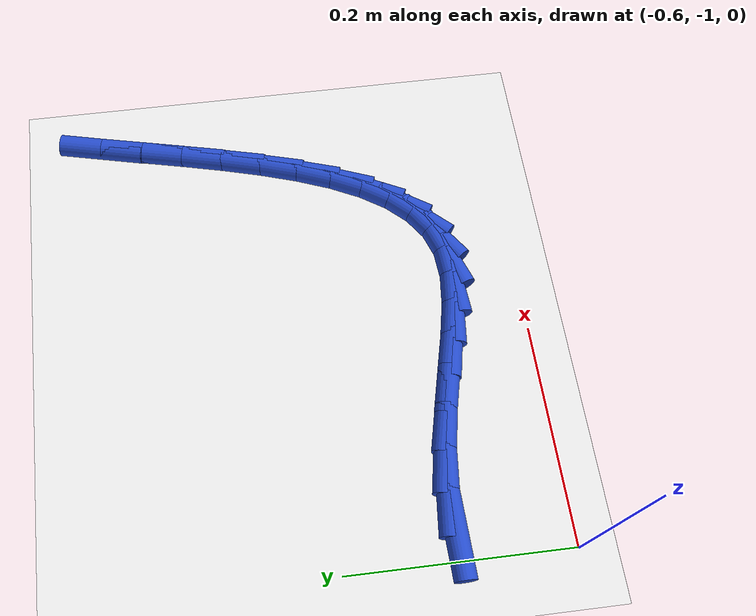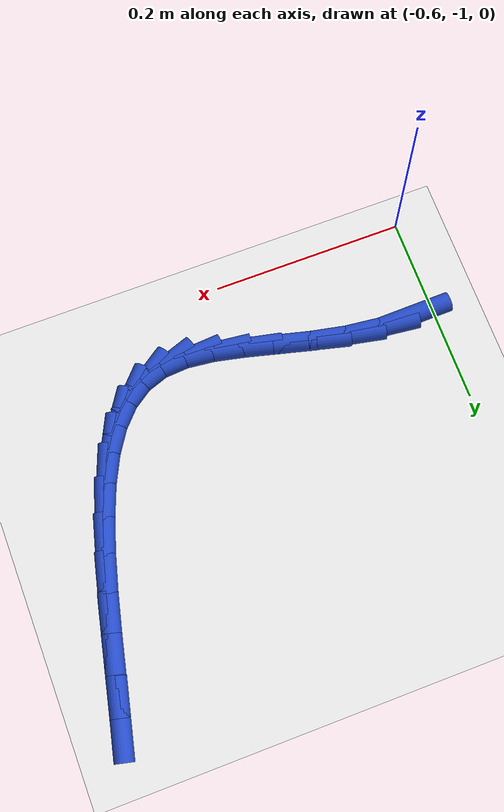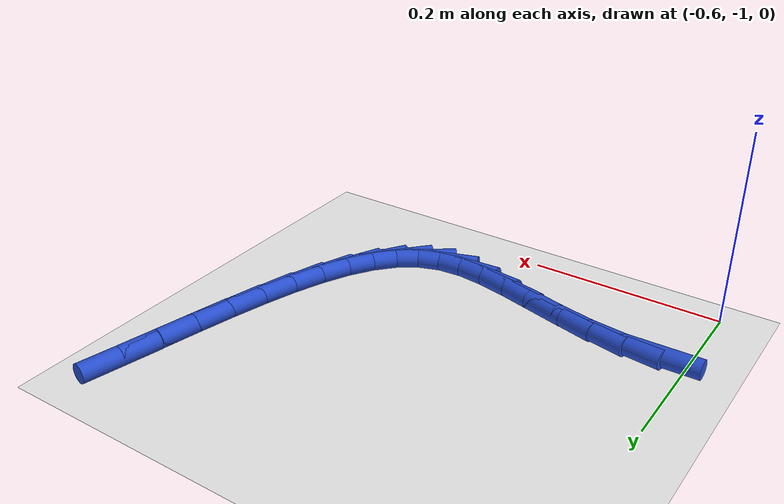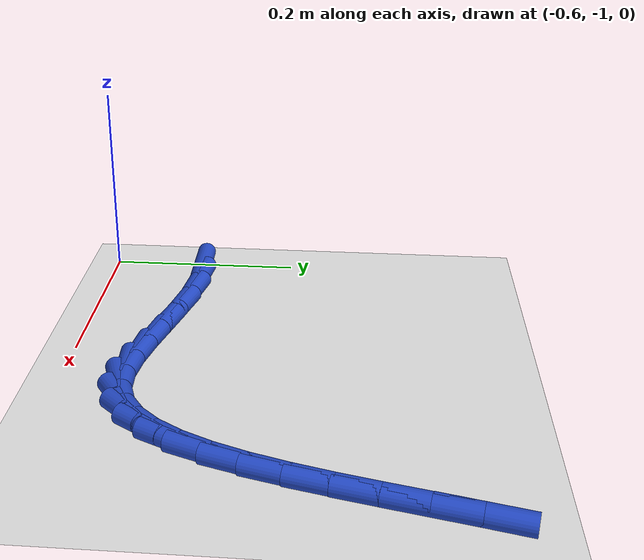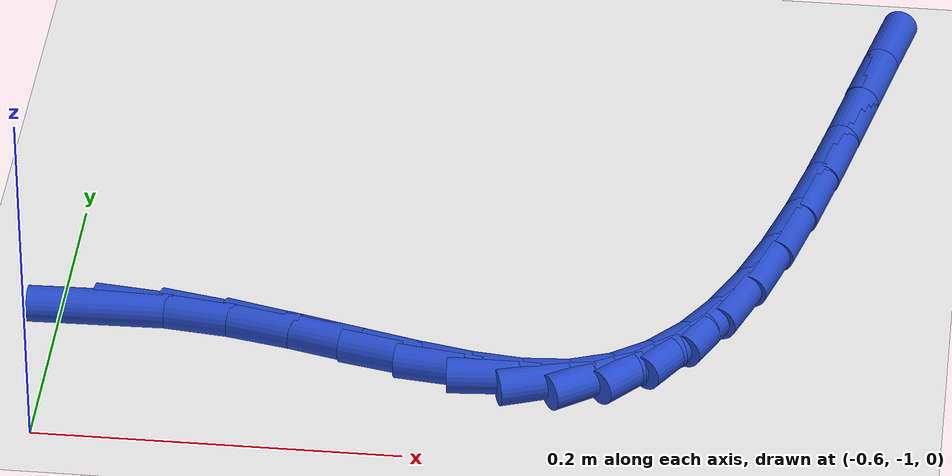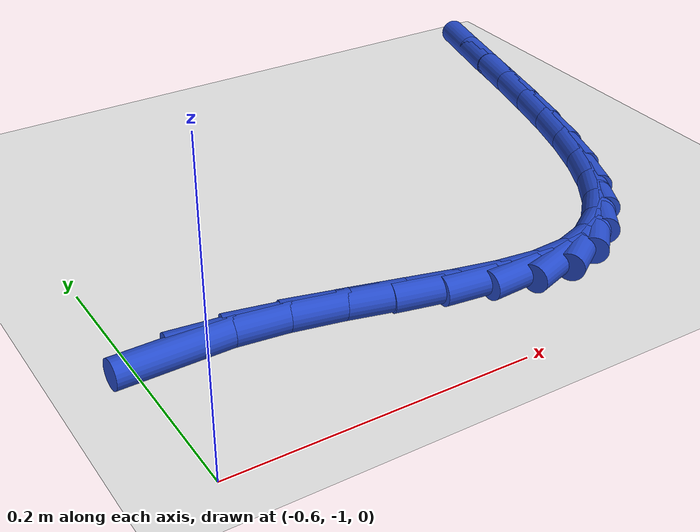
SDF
<sdf version="1.6">
 <world name="default">
  <model name="ground_plane">
   <static>1</static>
   <link name="link">
    <collision name="collision">
     <geometry><plane><normal>0 0 1</normal><size>100 100</size></plane></geometry>
     <surface><friction><ode><mu>100</mu><mu2>50</mu2></ode></friction></surface>
    </collision>
    <visual name="visual">
     <cast_shadows>0</cast_shadows>
     <geometry><plane><normal>0 0 1</normal><size>100 100</size></plane></geometry>
     <material>
      <script><uri>file://media/materials/scripts/gazebo.material</uri><name>Gazebo/WhiteGlow</name></script>
     </material>
    </visual>
   </link>
  </model>
  <model name="line">
   <link name="link_202">
    <pose>-0.5768679988752257 -0.8984970631908793 0.01 0 1.57 0.01736804363629547</pose>
    <collision name="collision">
     <geometry><cylinder><radius>0.01</radius><length>0.08</length></cylinder></geometry>
    </collision>
    <visual name="visual">
     <material>
      <script><name>Gazebo/Blue</name><uri>file://media/materials/scripts/gazebo.material</uri></script>
     </material>
     <geometry><cylinder><radius>0.01</radius><length>0.08</length></cylinder></geometry>
    </visual>
   </link>
   <link name="link_203">
    <pose>-0.5409756925989049 -0.8978736213611486 0.01 0 1.57 -0.11512561650365198</pose>
    <collision name="collision">
     <geometry><cylinder><radius>0.01</radius><length>0.08</length></cylinder></geometry>
    </collision>
    <visual name="visual">
     <material>
      <script><name>Gazebo/Blue</name><uri>file://media/materials/scripts/gazebo.material</uri></script>
     </material>
     <geometry><cylinder><radius>0.01</radius><length>0.08</length></cylinder></geometry>
    </visual>
   </link>
   <link name="link_204">
    <pose>-0.5051476642279542 -0.9020166652493253 0.01 0 1.57 -0.20292929302169233</pose>
    <collision name="collision">
     <geometry><cylinder><radius>0.01</radius><length>0.08</length></cylinder></geometry>
    </collision>
    <visual name="visual">
     <material>
      <script><name>Gazebo/Blue</name><uri>file://media/materials/scripts/gazebo.material</uri></script>
     </material>
     <geometry><cylinder><radius>0.01</radius><length>0.08</length></cylinder></geometry>
    </visual>
   </link>
   <link name="link_205">
    <pose>-0.46982870986383823 -0.9092839469081401 0.01 0 1.57 -0.24930120897853916</pose>
    <collision name="collision">
     <geometry><cylinder><radius>0.01</radius><length>0.08</length></cylinder></geometry>
    </collision>
    <visual name="visual">
     <material>
      <script><name>Gazebo/Blue</name><uri>file://media/materials/scripts/gazebo.material</uri></script>
     </material>
     <geometry><cylinder><radius>0.01</radius><length>0.08</length></cylinder></geometry>
    </visual>
   </link>
   <link name="link_206">
    <pose>-0.43546362560802276 -0.918033218390323 0.01 0 1.57 -0.25487217462858724</pose>
    <collision name="collision">
     <geometry><cylinder><radius>0.01</radius><length>0.08</length></cylinder></geometry>
    </collision>
    <visual name="visual">
     <material>
      <script><name>Gazebo/Blue</name><uri>file://media/materials/scripts/gazebo.material</uri></script>
     </material>
     <geometry><cylinder><radius>0.01</radius><length>0.08</length></cylinder></geometry>
    </visual>
   </link>
   <link name="link_207">
    <pose>-0.40249720756197294 -0.9266222317486053 0.01 0 1.57 -0.21469407096464935</pose>
    <collision name="collision">
     <geometry><cylinder><radius>0.01</radius><length>0.08</length></cylinder></geometry>
    </collision>
    <visual name="visual">
     <material>
      <script><name>Gazebo/Blue</name><uri>file://media/materials/scripts/gazebo.material</uri></script>
     </material>
     <geometry><cylinder><radius>0.01</radius><length>0.08</length></cylinder></geometry>
    </visual>
   </link>
   <link name="link_208">
    <pose>-0.3713742518271531 -0.9334087390357164 0.01 0 1.57 -0.11537874999128413</pose>
    <collision name="collision">
     <geometry><cylinder><radius>0.01</radius><length>0.08</length></cylinder></geometry>
    </collision>
    <visual name="visual">
     <material>
      <script><name>Gazebo/Blue</name><uri>file://media/materials/scripts/gazebo.material</uri></script>
     </material>
     <geometry><cylinder><radius>0.01</radius><length>0.08</length></cylinder></geometry>
    </visual>
   </link>
   <link name="link_209">
    <pose>-0.3425395545050304 -0.9367504923043866 0.01 0 1.57 0.06676021528191194</pose>
    <collision name="collision">
     <geometry><cylinder><radius>0.01</radius><length>0.08</length></cylinder></geometry>
    </collision>
    <visual name="visual">
     <material>
      <script><name>Gazebo/Blue</name><uri>file://media/materials/scripts/gazebo.material</uri></script>
     </material>
     <geometry><cylinder><radius>0.01</radius><length>0.08</length></cylinder></geometry>
    </visual>
   </link>
   <link name="link_210">
    <pose>-0.31643787777242444 -0.9350053453119491 0.01 0 1.57 0.3344449570568964</pose>
    <collision name="collision">
     <geometry><cylinder><radius>0.01</radius><length>0.08</length></cylinder></geometry>
    </collision>
    <visual name="visual">
     <material>
      <script><name>Gazebo/Blue</name><uri>file://media/materials/scripts/gazebo.material</uri></script>
     </material>
     <geometry><cylinder><radius>0.01</radius><length>0.08</length></cylinder></geometry>
    </visual>
   </link>
   <link name="link_211">
    <pose>-0.29336208671024483 -0.9269865326699482 0.01 0 1.57 0.6039568918315966</pose>
    <collision name="collision">
     <geometry><cylinder><radius>0.01</radius><length>0.08</length></cylinder></geometry>
    </collision>
    <visual name="visual">
     <material>
      <script><name>Gazebo/Blue</name><uri>file://media/materials/scripts/gazebo.material</uri></script>
     </material>
     <geometry><cylinder><radius>0.01</radius><length>0.08</length></cylinder></geometry>
    </visual>
   </link>
   <link name="link_212">
    <pose>-0.27310404645109 -0.9130092649365649 0.01 0 1.57 0.8274564358447353</pose>
    <collision name="collision">
     <geometry><cylinder><radius>0.01</radius><length>0.08</length></cylinder></geometry>
    </collision>
    <visual name="visual">
     <material>
      <script><name>Gazebo/Blue</name><uri>file://media/materials/scripts/gazebo.material</uri></script>
     </material>
     <geometry><cylinder><radius>0.01</radius><length>0.08</length></cylinder></geometry>
    </visual>
   </link>
   <link name="link_213">
    <pose>-0.25535247732747846 -0.8936979762722235 0.01 0 1.57 0.9960966731431262</pose>
    <collision name="collision">
     <geometry><cylinder><radius>0.01</radius><length>0.08</length></cylinder></geometry>
    </collision>
    <visual name="visual">
     <material>
      <script><name>Gazebo/Blue</name><uri>file://media/materials/scripts/gazebo.material</uri></script>
     </material>
     <geometry><cylinder><radius>0.01</radius><length>0.08</length></cylinder></geometry>
    </visual>
   </link>
   <link name="link_214">
    <pose>-0.23979609967192886 -0.8696771008373482 0.01 0 1.57 1.1180390583884752</pose>
    <collision name="collision">
     <geometry><cylinder><radius>0.01</radius><length>0.08</length></cylinder></geometry>
    </collision>
    <visual name="visual">
     <material>
      <script><name>Gazebo/Blue</name><uri>file://media/materials/scripts/gazebo.material</uri></script>
     </material>
     <geometry><cylinder><radius>0.01</radius><length>0.08</length></cylinder></geometry>
    </visual>
   </link>
   <link name="link_215">
    <pose>-0.22612363381695935 -0.8415710727923622 0.01 0 1.57 1.2047605935489383</pose>
    <collision name="collision">
     <geometry><cylinder><radius>0.01</radius><length>0.08</length></cylinder></geometry>
    </collision>
    <visual name="visual">
     <material>
      <script><name>Gazebo/Blue</name><uri>file://media/materials/scripts/gazebo.material</uri></script>
     </material>
     <geometry><cylinder><radius>0.01</radius><length>0.08</length></cylinder></geometry>
    </visual>
   </link>
   <link name="link_216">
    <pose>-0.2140238000950893 -0.8100043262976917 0.01 0 1.57 1.265595135329156</pose>
    <collision name="collision">
     <geometry><cylinder><radius>0.01</radius><length>0.08</length></cylinder></geometry>
    </collision>
    <visual name="visual">
     <material>
      <script><name>Gazebo/Blue</name><uri>file://media/materials/scripts/gazebo.material</uri></script>
     </material>
     <geometry><cylinder><radius>0.01</radius><length>0.08</length></cylinder></geometry>
    </visual>
   </link>
   <link name="link_217">
    <pose>-0.20318531883883684 -0.7756012955137596 0.01 0 1.57 1.307023638907497</pose>
    <collision name="collision">
     <geometry><cylinder><radius>0.01</radius><length>0.08</length></cylinder></geometry>
    </collision>
    <visual name="visual">
     <material>
      <script><name>Gazebo/Blue</name><uri>file://media/materials/scripts/gazebo.material</uri></script>
     </material>
     <geometry><cylinder><radius>0.01</radius><length>0.08</length></cylinder></geometry>
    </visual>
   </link>
   <link name="link_218">
    <pose>-0.1932969103807205 -0.7389864146009908 0.01 0 1.57 1.3332459144508086</pose>
    <collision name="collision">
     <geometry><cylinder><radius>0.01</radius><length>0.08</length></cylinder></geometry>
    </collision>
    <visual name="visual">
     <material>
      <script><name>Gazebo/Blue</name><uri>file://media/materials/scripts/gazebo.material</uri></script>
     </material>
     <geometry><cylinder><radius>0.01</radius><length>0.08</length></cylinder></geometry>
    </visual>
   </link>
   <link name="link_219">
    <pose>-0.18404729505325892 -0.7007841177198091 0.01 0 1.57 1.3468123058101678</pose>
    <collision name="collision">
     <geometry><cylinder><radius>0.01</radius><length>0.08</length></cylinder></geometry>
    </collision>
    <visual name="visual">
     <material>
      <script><name>Gazebo/Blue</name><uri>file://media/materials/scripts/gazebo.material</uri></script>
     </material>
     <geometry><cylinder><radius>0.01</radius><length>0.08</length></cylinder></geometry>
    </visual>
   </link>
   <link name="link_220">
    <pose>-0.1751251931889706 -0.661618839030639 0.01 0 1.57 1.3490601033247074</pose>
    <collision name="collision">
     <geometry><cylinder><radius>0.01</radius><length>0.08</length></cylinder></geometry>
    </collision>
    <visual name="visual">
     <material>
      <script><name>Gazebo/Blue</name><uri>file://media/materials/scripts/gazebo.material</uri></script>
     </material>
     <geometry><cylinder><radius>0.01</radius><length>0.08</length></cylinder></geometry>
    </visual>
   </link>
   <link name="link_221">
    <pose>-0.16621932512037416 -0.6221150126939047 0.01 0 1.57 1.3403541551877274</pose>
    <collision name="collision">
     <geometry><cylinder><radius>0.01</radius><length>0.08</length></cylinder></geometry>
    </collision>
    <visual name="visual">
     <material>
      <script><name>Gazebo/Blue</name><uri>file://media/materials/scripts/gazebo.material</uri></script>
     </material>
     <geometry><cylinder><radius>0.01</radius><length>0.08</length></cylinder></geometry>
    </visual>
   </link>
  </model>
 </world>
</sdf>
